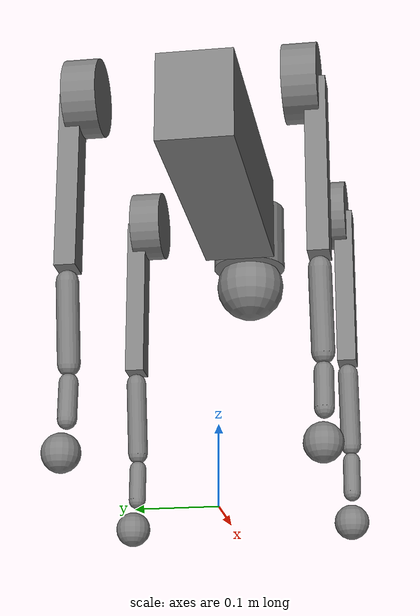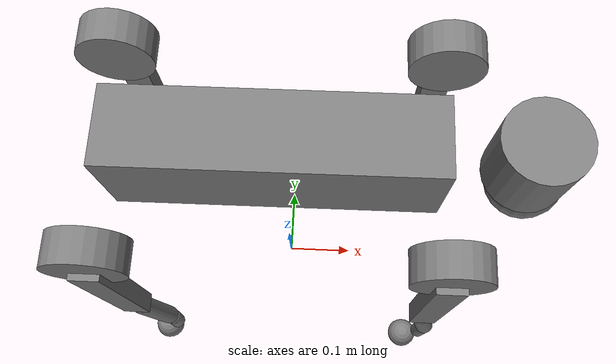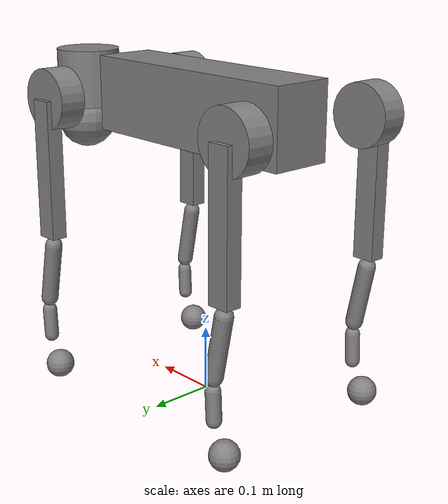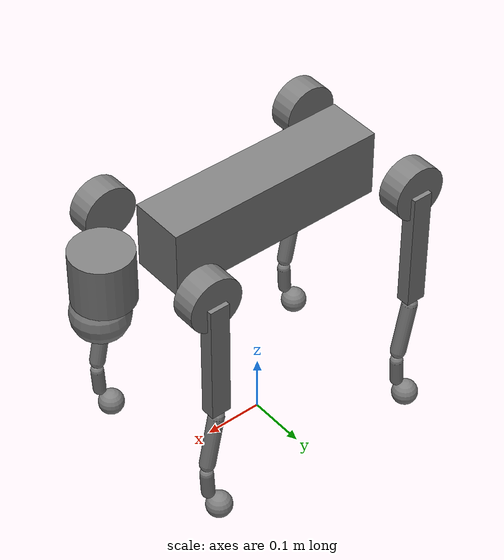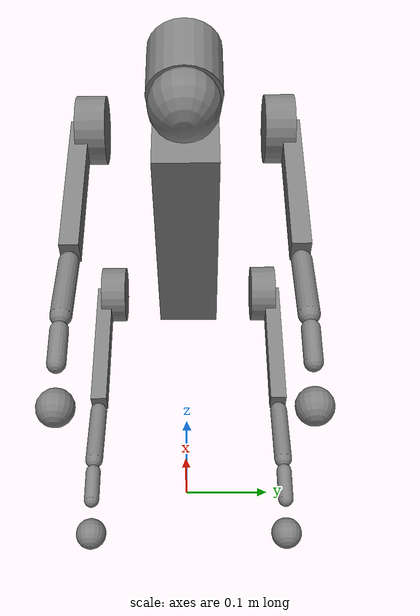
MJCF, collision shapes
<mujoco model="go2">

  <compiler angle="radian" meshdir="assets" autolimits="true"/>

  <!-- MuJoCo-only; ignored by Drake. -->
  <option cone="elliptic" impratio="100"/>

  <default>
    <default class="visual">
      <geom type="mesh" contype="0" conaffinity="0" group="2"/>
    </default>
    <default class="collision">
      <geom group="3" condim="3" friction="0.6" margin="0"/>
    </default>
    <default class="foot">
      <!-- priority/solimp/condim=6/torsional friction are MuJoCo-only; Drake sees
           condim=3, mu=0.8. -->
      <geom type="sphere" size="0.022" pos="-0.002 0 -0.213" group="3" priority="1"
        solimp="0.015 1 0.022" condim="6" friction="0.8 0.02 0.01" margin="0"/>
    </default>
  </default>

  <asset>
    <material name="metal" rgba=".9 .95 .95 1"/>
    <material name="black" rgba="0 0 0 1"/>
    <material name="white" rgba="1 1 1 1"/>
    <material name="gray" rgba="0.671705 0.692426 0.774270 1"/>

    <mesh file="base_0.obj"/>
    <mesh file="base_1.obj"/>
    <mesh file="base_2.obj"/>
    <mesh file="base_3.obj"/>
    <mesh file="base_4.obj"/>
    <mesh file="hip_0.obj"/>
    <mesh file="hip_1.obj"/>
    <mesh file="thigh_0.obj"/>
    <mesh file="thigh_1.obj"/>
    <mesh file="thigh_mirror_0.obj"/>
    <mesh file="thigh_mirror_1.obj"/>
    <mesh file="calf_0.obj"/>
    <mesh file="calf_1.obj"/>
    <mesh file="calf_mirror_0.obj"/>
    <mesh file="calf_mirror_1.obj"/>
    <mesh file="foot.obj"/>
  </asset>

  <worldbody>
    <body name="base" pos="0 0 0.445">
      <inertial pos="0.021112 0 -0.005366" quat="-0.000543471 0.713435 -0.00173769 0.700719" mass="6.921"
        diaginertia="0.107027 0.0980771 0.0244531"/>
      <freejoint name="floating_base"/>
      <geom mesh="base_0" material="black" class="visual"/>
      <geom mesh="base_1" material="black" class="visual"/>
      <geom mesh="base_2" material="black" class="visual"/>
      <geom mesh="base_3" material="white" class="visual"/>
      <geom mesh="base_4" material="gray" class="visual"/>
      <geom name="torso_box" size="0.1881 0.04675 0.057" type="box" class="collision"/>
      <geom name="head_cyl" size="0.05 0.045" pos="0.285 0 0.01" type="cylinder" class="collision"/>
      <geom name="head_sphere" size="0.047" pos="0.293 0 -0.06" type="sphere" class="collision"/>
      <site name="imu" pos="-0.02557 0 0.04232"/>

      <body name="FL_hip" pos="0.1934 0.0465 0">
        <inertial pos="-0.0054 0.00194 -0.000105" quat="0.497014 0.499245 0.505462 0.498237" mass="0.678"
          diaginertia="0.00088403 0.000596003 0.000479967"/>
        <joint name="FL_hip_joint" axis="1 0 0" range="-1.0472 1.0472" damping="0.05" armature="0.01"/>
        <geom mesh="hip_0" material="metal" class="visual"/>
        <geom mesh="hip_1" material="gray" class="visual"/>
        <geom name="FL_hip_col" size="0.046 0.02" pos="0 0.08 0" quat="0.707107 0.707107 0 0" type="cylinder"
          class="collision"/>
        <body name="FL_thigh" pos="0 0.0955 0">
          <inertial pos="-0.00374 -0.0223 -0.0327" quat="0.829533 0.0847635 -0.0200632 0.551623" mass="1.152"
            diaginertia="0.00594973 0.00584149 0.000878787"/>
          <joint name="FL_thigh_joint" axis="0 1 0" range="-1.5708 3.4907" damping="0.05" armature="0.01"/>
          <geom mesh="thigh_0" material="metal" class="visual"/>
          <geom mesh="thigh_1" material="gray" class="visual"/>
          <geom name="FL_thigh_col" size="0.1065 0.01225 0.017" pos="0 0 -0.1065" quat="0.707107 0 0.707107 0"
            type="box" class="collision"/>
          <body name="FL_calf" pos="0 0 -0.213">
            <inertial pos="0.00629595 -0.000622121 -0.141417" quat="0.710672 0.00154099 -0.00450087 0.703508"
              mass="0.241352" diaginertia="0.0014901 0.00146356 5.31397e-05"/>
            <joint name="FL_calf_joint" axis="0 1 0" range="-2.7227 -0.83776" damping="0.05" armature="0.02"/>
            <geom mesh="calf_0" material="gray" class="visual"/>
            <geom mesh="calf_1" material="black" class="visual"/>
            <geom name="FL_calf_upper" size="0.013 0.047" pos="0.01 0 -0.06" quat="0.995004 0 -0.0998334 0"
              type="capsule" class="collision"/>
            <geom name="FL_calf_lower" size="0.011 0.0215" pos="0.02 0 -0.148" quat="0.999688 0 0.0249974 0"
              type="capsule" class="collision"/>
            <geom pos="0 0 -0.213" mesh="foot" class="visual" material="black"/>
            <geom name="FL" class="foot"/>
            <site name="FL_site" pos="0 0 -0.213" size="0.01" group="4"/>
          </body>
        </body>
      </body>

      <body name="FR_hip" pos="0.1934 -0.0465 0">
        <inertial pos="-0.0054 -0.00194 -0.000105" quat="0.498237 0.505462 0.499245 0.497014" mass="0.678"
          diaginertia="0.00088403 0.000596003 0.000479967"/>
        <joint name="FR_hip_joint" axis="1 0 0" range="-1.0472 1.0472" damping="0.05" armature="0.01"/>
        <geom mesh="hip_0" material="metal" class="visual" quat="4.63268e-05 1 0 0"/>
        <geom mesh="hip_1" material="gray" class="visual" quat="4.63268e-05 1 0 0"/>
        <geom name="FR_hip_col" size="0.046 0.02" pos="0 -0.08 0" quat="0.707107 0.707107 0 0" type="cylinder"
          class="collision"/>
        <body name="FR_thigh" pos="0 -0.0955 0">
          <inertial pos="-0.00374 0.0223 -0.0327" quat="0.551623 -0.0200632 0.0847635 0.829533" mass="1.152"
            diaginertia="0.00594973 0.00584149 0.000878787"/>
          <joint name="FR_thigh_joint" axis="0 1 0" range="-1.5708 3.4907" damping="0.05" armature="0.01"/>
          <geom mesh="thigh_mirror_0" material="metal" class="visual"/>
          <geom mesh="thigh_mirror_1" material="gray" class="visual"/>
          <geom name="FR_thigh_col" size="0.1065 0.01225 0.017" pos="0 0 -0.1065" quat="0.707107 0 0.707107 0"
            type="box" class="collision"/>
          <body name="FR_calf" pos="0 0 -0.213">
            <inertial pos="0.00629595 0.000622121 -0.141417" quat="0.703508 -0.00450087 0.00154099 0.710672"
              mass="0.241352" diaginertia="0.0014901 0.00146356 5.31397e-05"/>
            <joint name="FR_calf_joint" axis="0 1 0" range="-2.7227 -0.83776" damping="0.05" armature="0.02"/>
            <geom mesh="calf_mirror_0" material="gray" class="visual"/>
            <geom mesh="calf_mirror_1" material="black" class="visual"/>
            <geom name="FR_calf_upper" size="0.013 0.047" pos="0.01 0 -0.06" quat="0.995004 0 -0.0998334 0"
              type="capsule" class="collision"/>
            <geom name="FR_calf_lower" size="0.011 0.0215" pos="0.02 0 -0.148" quat="0.999688 0 0.0249974 0"
              type="capsule" class="collision"/>
            <geom pos="0 0 -0.213" mesh="foot" class="visual" material="black"/>
            <geom name="FR" class="foot"/>
            <site name="FR_site" pos="0 0 -0.213" size="0.01" group="4"/>
          </body>
        </body>
      </body>

      <body name="RL_hip" pos="-0.1934 0.0465 0">
        <inertial pos="0.0054 0.00194 -0.000105" quat="0.505462 0.498237 0.497014 0.499245" mass="0.678"
          diaginertia="0.00088403 0.000596003 0.000479967"/>
        <joint name="RL_hip_joint" axis="1 0 0" range="-1.0472 1.0472" damping="0.05" armature="0.01"/>
        <geom mesh="hip_0" material="metal" class="visual" quat="4.63268e-05 0 1 0"/>
        <geom mesh="hip_1" material="gray" class="visual" quat="4.63268e-05 0 1 0"/>
        <geom name="RL_hip_col" size="0.046 0.02" pos="0 0.08 0" quat="0.707107 0.707107 0 0" type="cylinder"
          class="collision"/>
        <body name="RL_thigh" pos="0 0.0955 0">
          <inertial pos="-0.00374 -0.0223 -0.0327" quat="0.829533 0.0847635 -0.0200632 0.551623" mass="1.152"
            diaginertia="0.00594973 0.00584149 0.000878787"/>
          <joint name="RL_thigh_joint" axis="0 1 0" range="-0.5236 4.5379" damping="0.05" armature="0.01"/>
          <geom mesh="thigh_0" material="metal" class="visual"/>
          <geom mesh="thigh_1" material="gray" class="visual"/>
          <geom name="RL_thigh_col" size="0.1065 0.01225 0.017" pos="0 0 -0.1065" quat="0.707107 0 0.707107 0"
            type="box" class="collision"/>
          <body name="RL_calf" pos="0 0 -0.213">
            <inertial pos="0.00629595 -0.000622121 -0.141417" quat="0.710672 0.00154099 -0.00450087 0.703508"
              mass="0.241352" diaginertia="0.0014901 0.00146356 5.31397e-05"/>
            <joint name="RL_calf_joint" axis="0 1 0" range="-2.7227 -0.83776" damping="0.05" armature="0.02"/>
            <geom mesh="calf_0" material="gray" class="visual"/>
            <geom mesh="calf_1" material="black" class="visual"/>
            <geom name="RL_calf_upper" size="0.013 0.047" pos="0.01 0 -0.06" quat="0.995004 0 -0.0998334 0"
              type="capsule" class="collision"/>
            <geom name="RL_calf_lower" size="0.011 0.0215" pos="0.02 0 -0.148" quat="0.999688 0 0.0249974 0"
              type="capsule" class="collision"/>
            <geom pos="0 0 -0.213" mesh="foot" class="visual" material="black"/>
            <geom name="RL" class="foot"/>
            <site name="RL_site" pos="0 0 -0.213" size="0.01" group="4"/>
          </body>
        </body>
      </body>

      <body name="RR_hip" pos="-0.1934 -0.0465 0">
        <inertial pos="0.0054 -0.00194 -0.000105" quat="0.499245 0.497014 0.498237 0.505462" mass="0.678"
          diaginertia="0.00088403 0.000596003 0.000479967"/>
        <joint name="RR_hip_joint" axis="1 0 0" range="-1.0472 1.0472" damping="0.05" armature="0.01"/>
        <geom mesh="hip_0" material="metal" class="visual" quat="2.14617e-09 4.63268e-05 4.63268e-05 -1"/>
        <geom mesh="hip_1" material="gray" class="visual" quat="2.14617e-09 4.63268e-05 4.63268e-05 -1"/>
        <geom name="RR_hip_col" size="0.046 0.02" pos="0 -0.08 0" quat="0.707107 0.707107 0 0" type="cylinder"
          class="collision"/>
        <body name="RR_thigh" pos="0 -0.0955 0">
          <inertial pos="-0.00374 0.0223 -0.0327" quat="0.551623 -0.0200632 0.0847635 0.829533" mass="1.152"
            diaginertia="0.00594973 0.00584149 0.000878787"/>
          <joint name="RR_thigh_joint" axis="0 1 0" range="-0.5236 4.5379" damping="0.05" armature="0.01"/>
          <geom mesh="thigh_mirror_0" material="metal" class="visual"/>
          <geom mesh="thigh_mirror_1" material="gray" class="visual"/>
          <geom name="RR_thigh_col" size="0.1065 0.01225 0.017" pos="0 0 -0.1065" quat="0.707107 0 0.707107 0"
            type="box" class="collision"/>
          <body name="RR_calf" pos="0 0 -0.213">
            <inertial pos="0.00629595 0.000622121 -0.141417" quat="0.703508 -0.00450087 0.00154099 0.710672"
              mass="0.241352" diaginertia="0.0014901 0.00146356 5.31397e-05"/>
            <joint name="RR_calf_joint" axis="0 1 0" range="-2.7227 -0.83776" damping="0.05" armature="0.02"/>
            <geom mesh="calf_mirror_0" material="gray" class="visual"/>
            <geom mesh="calf_mirror_1" material="black" class="visual"/>
            <geom name="RR_calf_upper" size="0.013 0.047" pos="0.01 0 -0.06" quat="0.995004 0 -0.0998334 0"
              type="capsule" class="collision"/>
            <geom name="RR_calf_lower" size="0.011 0.0215" pos="0.02 0 -0.148" quat="0.999688 0 0.0249974 0"
              type="capsule" class="collision"/>
            <geom pos="0 0 -0.213" mesh="foot" class="visual" material="black"/>
            <geom name="RR" class="foot"/>
            <site name="RR_site" pos="0 0 -0.213" size="0.01" group="4"/>
          </body>
        </body>
      </body>
    </body>
  </worldbody>

  <!-- Datasheet peaks. ctrlrange == forcerange, gear=1: Drake ignores gear when
       computing effort limits. Flat torque box - enforce torque-speed in the TO. -->
  <actuator>
    <motor name="FL_hip"   joint="FL_hip_joint"   gear="1" ctrlrange="-23.7 23.7"   forcerange="-23.7 23.7"/>
    <motor name="FL_thigh" joint="FL_thigh_joint" gear="1" ctrlrange="-23.7 23.7"   forcerange="-23.7 23.7"/>
    <motor name="FL_calf"  joint="FL_calf_joint"  gear="1" ctrlrange="-45.43 45.43" forcerange="-45.43 45.43"/>
    <motor name="FR_hip"   joint="FR_hip_joint"   gear="1" ctrlrange="-23.7 23.7"   forcerange="-23.7 23.7"/>
    <motor name="FR_thigh" joint="FR_thigh_joint" gear="1" ctrlrange="-23.7 23.7"   forcerange="-23.7 23.7"/>
    <motor name="FR_calf"  joint="FR_calf_joint"  gear="1" ctrlrange="-45.43 45.43" forcerange="-45.43 45.43"/>
    <motor name="RL_hip"   joint="RL_hip_joint"   gear="1" ctrlrange="-23.7 23.7"   forcerange="-23.7 23.7"/>
    <motor name="RL_thigh" joint="RL_thigh_joint" gear="1" ctrlrange="-23.7 23.7"   forcerange="-23.7 23.7"/>
    <motor name="RL_calf"  joint="RL_calf_joint"  gear="1" ctrlrange="-45.43 45.43" forcerange="-45.43 45.43"/>
    <motor name="RR_hip"   joint="RR_hip_joint"   gear="1" ctrlrange="-23.7 23.7"   forcerange="-23.7 23.7"/>
    <motor name="RR_thigh" joint="RR_thigh_joint" gear="1" ctrlrange="-23.7 23.7"   forcerange="-23.7 23.7"/>
    <motor name="RR_calf"  joint="RR_calf_joint"  gear="1" ctrlrange="-45.43 45.43" forcerange="-45.43 45.43"/>
  </actuator>

  <!-- Ignored by Drake (one warning). Consumers read these by name. -->
  <sensor>
    <jointpos joint="FL_hip_joint" name="abduction_front_left_pos"/>
    <jointpos joint="FL_thigh_joint" name="hip_front_left_pos"/>
    <jointpos joint="FL_calf_joint" name="knee_front_left_pos"/>
    <jointpos joint="RL_hip_joint" name="abduction_hind_left_pos"/>
    <jointpos joint="RL_thigh_joint" name="hip_hind_left_pos"/>
    <jointpos joint="RL_calf_joint" name="knee_hind_left_pos"/>
    <jointpos joint="FR_hip_joint" name="abduction_front_right_pos"/>
    <jointpos joint="FR_thigh_joint" name="hip_front_right_pos"/>
    <jointpos joint="FR_calf_joint" name="knee_front_right_pos"/>
    <jointpos joint="RR_hip_joint" name="abduction_hind_right_pos"/>
    <jointpos joint="RR_thigh_joint" name="hip_hind_right_pos"/>
    <jointpos joint="RR_calf_joint" name="knee_hind_right_pos"/>
    <jointvel joint="FL_hip_joint" name="abduction_front_left_vel"/>
    <jointvel joint="FL_thigh_joint" name="hip_front_left_vel"/>
    <jointvel joint="FL_calf_joint" name="knee_front_left_vel"/>
    <jointvel joint="RL_hip_joint" name="abduction_hind_left_vel"/>
    <jointvel joint="RL_thigh_joint" name="hip_hind_left_vel"/>
    <jointvel joint="RL_calf_joint" name="knee_hind_left_vel"/>
    <jointvel joint="FR_hip_joint" name="abduction_front_right_vel"/>
    <jointvel joint="FR_thigh_joint" name="hip_front_right_vel"/>
    <jointvel joint="FR_calf_joint" name="knee_front_right_vel"/>
    <jointvel joint="RR_hip_joint" name="abduction_hind_right_vel"/>
    <jointvel joint="RR_thigh_joint" name="hip_hind_right_vel"/>
    <jointvel joint="RR_calf_joint" name="knee_hind_right_vel"/>
    <gyro site="imu" name="gyro"/>
    <accelerometer site="imu" name="accelerometer"/>
    <framequat objtype="site" objname="imu" name="orientation"/>
    <framepos objtype="site" objname="imu" name="global_position"/>
    <framelinvel objtype="site" objname="imu" name="global_linvel"/>
    <frameangvel objtype="site" objname="imu" name="global_angvel"/>
  </sensor>
  <keyframe>
    <key name="home" qpos="0 0 0.27 1 0 0 0 0 0.9 -1.8 0 0.9 -1.8 0 0.9 -1.8 0 0.9 -1.8"
      ctrl="0 0 0 0 0 0 0 0 0 0 0 0"/>
    <key name="tuck" qpos="0 0 0.30 1 0 0 0 0 2.2 -2.7 0 2.2 -2.7 0 2.2 -2.7 0 2.2 -2.7"
      ctrl="0 0 0 0 0 0 0 0 0 0 0 0"/>
  </keyframe>
</mujoco>
